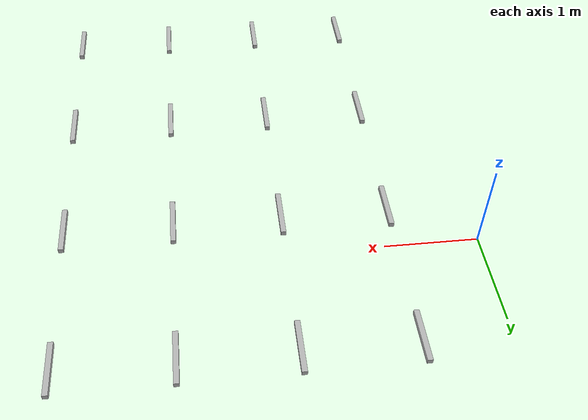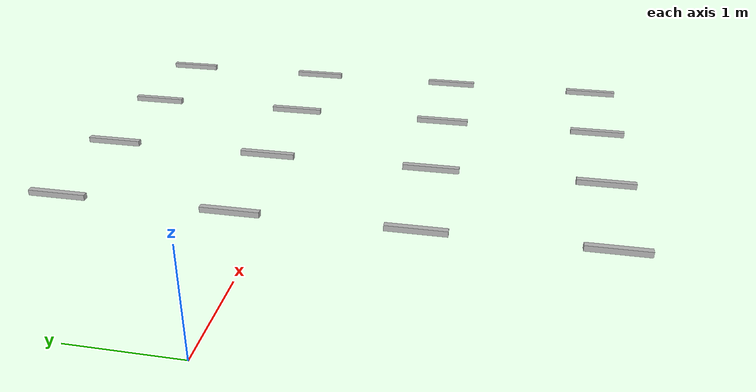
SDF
<?xml version="1.0" ?>

<sdf version="1.5">
  <world name="default">
    <include>
      <uri>model://sun</uri>
    </include>

    <model name='pendulum_1'>
      <pose>1.05 0 0.9  0.0 0 0</pose>
      <link name="link">
        <pose>0 0 -0.25  0 0 0</pose>
        <inertial>
          <mass>3.375</mass>
          <inertia>
            <ixx>0.071015625</ixx>
            <iyy>0.0014062500000000004</iyy>
            <izz>0.071015625</izz>
            <ixy>0.0</ixy>
            <ixz>0.0</ixz>
            <iyz>0.0</iyz>
          </inertia>
        </inertial>
        <collision name="collision">
          <geometry>
            <box>
              <size>0.05 0.5 0.05</size>
            </box>
          </geometry>
        </collision>
        <visual name="visual">
          <geometry>
            <box>
              <size>0.05 0.5 0.05</size>
            </box>
          </geometry>
        </visual>
      </link>
      <joint name="joint" type="revolute">
        <pose>0 0.25 0  0 0 0</pose>
        <parent>world</parent>
        <child>link</child>
        <axis>
          <xyz>1 0 0</xyz>
          <dynamics>
            <friction>0.0</friction>
          </dynamics>
        </axis>
      </joint>
    </model>

    <model name='pendulum_2'>
      <pose>2.1 0 0.9  0.0 0 0</pose>
      <link name="link">
        <pose>0 0 -0.25  0 0 0</pose>
        <inertial>
          <mass>3.375</mass>
          <inertia>
            <ixx>0.071015625</ixx>
            <iyy>0.0014062500000000004</iyy>
            <izz>0.071015625</izz>
            <ixy>0.0</ixy>
            <ixz>0.0</ixz>
            <iyz>0.0</iyz>
          </inertia>
        </inertial>
        <collision name="collision">
          <geometry>
            <box>
              <size>0.05 0.5 0.05</size>
            </box>
          </geometry>
        </collision>
        <visual name="visual">
          <geometry>
            <box>
              <size>0.05 0.5 0.05</size>
            </box>
          </geometry>
        </visual>
      </link>
      <joint name="joint" type="revolute">
        <pose>0 0.25 0  0 0 0</pose>
        <parent>world</parent>
        <child>link</child>
        <axis>
          <xyz>1 0 0</xyz>
          <dynamics>
            <friction>0.1</friction>
          </dynamics>
        </axis>
      </joint>
    </model>

    <model name='pendulum_3'>
      <pose>3.1500000000000004 0 0.9  0.0 0 0</pose>
      <link name="link">
        <pose>0 0 -0.25  0 0 0</pose>
        <inertial>
          <mass>3.375</mass>
          <inertia>
            <ixx>0.071015625</ixx>
            <iyy>0.0014062500000000004</iyy>
            <izz>0.071015625</izz>
            <ixy>0.0</ixy>
            <ixz>0.0</ixz>
            <iyz>0.0</iyz>
          </inertia>
        </inertial>
        <collision name="collision">
          <geometry>
            <box>
              <size>0.05 0.5 0.05</size>
            </box>
          </geometry>
        </collision>
        <visual name="visual">
          <geometry>
            <box>
              <size>0.05 0.5 0.05</size>
            </box>
          </geometry>
        </visual>
      </link>
      <joint name="joint" type="revolute">
        <pose>0 0.25 0  0 0 0</pose>
        <parent>world</parent>
        <child>link</child>
        <axis>
          <xyz>1 0 0</xyz>
          <dynamics>
            <friction>1.0</friction>
          </dynamics>
        </axis>
      </joint>
    </model>

    <model name='pendulum_4'>
      <pose>4.2 0 0.9  0.0 0 0</pose>
      <link name="link">
        <pose>0 0 -0.25  0 0 0</pose>
        <inertial>
          <mass>3.375</mass>
          <inertia>
            <ixx>0.071015625</ixx>
            <iyy>0.0014062500000000004</iyy>
            <izz>0.071015625</izz>
            <ixy>0.0</ixy>
            <ixz>0.0</ixz>
            <iyz>0.0</iyz>
          </inertia>
        </inertial>
        <collision name="collision">
          <geometry>
            <box>
              <size>0.05 0.5 0.05</size>
            </box>
          </geometry>
        </collision>
        <visual name="visual">
          <geometry>
            <box>
              <size>0.05 0.5 0.05</size>
            </box>
          </geometry>
        </visual>
      </link>
      <joint name="joint" type="revolute">
        <pose>0 0.25 0  0 0 0</pose>
        <parent>world</parent>
        <child>link</child>
        <axis>
          <xyz>1 0 0</xyz>
          <dynamics>
            <friction>10.0</friction>
          </dynamics>
        </axis>
      </joint>
    </model>

    <model name='universal_axis1_1'>
      <pose>1.05 -1.5 0.9  0.0 0 0</pose>
      <link name="link">
        <pose>0 0 -0.25  0 0 0</pose>
        <inertial>
          <mass>3.375</mass>
          <inertia>
            <ixx>0.071015625</ixx>
            <iyy>0.0014062500000000004</iyy>
            <izz>0.071015625</izz>
            <ixy>0.0</ixy>
            <ixz>0.0</ixz>
            <iyz>0.0</iyz>
          </inertia>
        </inertial>
        <collision name="collision">
          <geometry>
            <box>
              <size>0.05 0.5 0.05</size>
            </box>
          </geometry>
        </collision>
        <visual name="visual">
          <geometry>
            <box>
              <size>0.05 0.5 0.05</size>
            </box>
          </geometry>
        </visual>
      </link>
      <joint name="joint" type="universal">
        <pose>0 0.25 0  0 0 0</pose>
        <parent>world</parent>
        <child>link</child>
        <axis>
          <xyz>1 0 0</xyz>
          <dynamics>
            <friction>0.0</friction>
          </dynamics>
        </axis>
        <axis2>
          <xyz>0 0 1</xyz>
          <dynamics>
            <friction>0</friction>
          </dynamics>
        </axis2>
      </joint>
    </model>

    <model name='universal_axis1_2'>
      <pose>2.1 -1.5 0.9  0.0 0 0</pose>
      <link name="link">
        <pose>0 0 -0.25  0 0 0</pose>
        <inertial>
          <mass>3.375</mass>
          <inertia>
            <ixx>0.071015625</ixx>
            <iyy>0.0014062500000000004</iyy>
            <izz>0.071015625</izz>
            <ixy>0.0</ixy>
            <ixz>0.0</ixz>
            <iyz>0.0</iyz>
          </inertia>
        </inertial>
        <collision name="collision">
          <geometry>
            <box>
              <size>0.05 0.5 0.05</size>
            </box>
          </geometry>
        </collision>
        <visual name="visual">
          <geometry>
            <box>
              <size>0.05 0.5 0.05</size>
            </box>
          </geometry>
        </visual>
      </link>
      <joint name="joint" type="universal">
        <pose>0 0.25 0  0 0 0</pose>
        <parent>world</parent>
        <child>link</child>
        <axis>
          <xyz>1 0 0</xyz>
          <dynamics>
            <friction>0.1</friction>
          </dynamics>
        </axis>
        <axis2>
          <xyz>0 0 1</xyz>
          <dynamics>
            <friction>0</friction>
          </dynamics>
        </axis2>
      </joint>
    </model>

    <model name='universal_axis1_3'>
      <pose>3.1500000000000004 -1.5 0.9  0.0 0 0</pose>
      <link name="link">
        <pose>0 0 -0.25  0 0 0</pose>
        <inertial>
          <mass>3.375</mass>
          <inertia>
            <ixx>0.071015625</ixx>
            <iyy>0.0014062500000000004</iyy>
            <izz>0.071015625</izz>
            <ixy>0.0</ixy>
            <ixz>0.0</ixz>
            <iyz>0.0</iyz>
          </inertia>
        </inertial>
        <collision name="collision">
          <geometry>
            <box>
              <size>0.05 0.5 0.05</size>
            </box>
          </geometry>
        </collision>
        <visual name="visual">
          <geometry>
            <box>
              <size>0.05 0.5 0.05</size>
            </box>
          </geometry>
        </visual>
      </link>
      <joint name="joint" type="universal">
        <pose>0 0.25 0  0 0 0</pose>
        <parent>world</parent>
        <child>link</child>
        <axis>
          <xyz>1 0 0</xyz>
          <dynamics>
            <friction>1.0</friction>
          </dynamics>
        </axis>
        <axis2>
          <xyz>0 0 1</xyz>
          <dynamics>
            <friction>0</friction>
          </dynamics>
        </axis2>
      </joint>
    </model>

    <model name='universal_axis1_4'>
      <pose>4.2 -1.5 0.9  0.0 0 0</pose>
      <link name="link">
        <pose>0 0 -0.25  0 0 0</pose>
        <inertial>
          <mass>3.375</mass>
          <inertia>
            <ixx>0.071015625</ixx>
            <iyy>0.0014062500000000004</iyy>
            <izz>0.071015625</izz>
            <ixy>0.0</ixy>
            <ixz>0.0</ixz>
            <iyz>0.0</iyz>
          </inertia>
        </inertial>
        <collision name="collision">
          <geometry>
            <box>
              <size>0.05 0.5 0.05</size>
            </box>
          </geometry>
        </collision>
        <visual name="visual">
          <geometry>
            <box>
              <size>0.05 0.5 0.05</size>
            </box>
          </geometry>
        </visual>
      </link>
      <joint name="joint" type="universal">
        <pose>0 0.25 0  0 0 0</pose>
        <parent>world</parent>
        <child>link</child>
        <axis>
          <xyz>1 0 0</xyz>
          <dynamics>
            <friction>10.0</friction>
          </dynamics>
        </axis>
        <axis2>
          <xyz>0 0 1</xyz>
          <dynamics>
            <friction>0</friction>
          </dynamics>
        </axis2>
      </joint>
    </model>

    <model name='universal_axis2_1'>
      <pose>1.05 -3.0 0.9  0.0 0 0</pose>
      <link name="link">
        <pose>0 0 -0.25  0 0 0</pose>
        <inertial>
          <mass>3.375</mass>
          <inertia>
            <ixx>0.071015625</ixx>
            <iyy>0.0014062500000000004</iyy>
            <izz>0.071015625</izz>
            <ixy>0.0</ixy>
            <ixz>0.0</ixz>
            <iyz>0.0</iyz>
          </inertia>
        </inertial>
        <collision name="collision">
          <geometry>
            <box>
              <size>0.05 0.5 0.05</size>
            </box>
          </geometry>
        </collision>
        <visual name="visual">
          <geometry>
            <box>
              <size>0.05 0.5 0.05</size>
            </box>
          </geometry>
        </visual>
      </link>
      <joint name="joint" type="universal">
        <pose>0 0.25 0  0 0 0</pose>
        <parent>world</parent>
        <child>link</child>
        <axis>
          <xyz>0 0 1</xyz>
          <dynamics>
            <friction>0</friction>
          </dynamics>
        </axis>
        <axis2>
          <xyz>1 0 0</xyz>
          <dynamics>
            <friction>0.0</friction>
          </dynamics>
        </axis2>
      </joint>
    </model>

    <model name='universal_axis2_2'>
      <pose>2.1 -3.0 0.9  0.0 0 0</pose>
      <link name="link">
        <pose>0 0 -0.25  0 0 0</pose>
        <inertial>
          <mass>3.375</mass>
          <inertia>
            <ixx>0.071015625</ixx>
            <iyy>0.0014062500000000004</iyy>
            <izz>0.071015625</izz>
            <ixy>0.0</ixy>
            <ixz>0.0</ixz>
            <iyz>0.0</iyz>
          </inertia>
        </inertial>
        <collision name="collision">
          <geometry>
            <box>
              <size>0.05 0.5 0.05</size>
            </box>
          </geometry>
        </collision>
        <visual name="visual">
          <geometry>
            <box>
              <size>0.05 0.5 0.05</size>
            </box>
          </geometry>
        </visual>
      </link>
      <joint name="joint" type="universal">
        <pose>0 0.25 0  0 0 0</pose>
        <parent>world</parent>
        <child>link</child>
        <axis>
          <xyz>0 0 1</xyz>
          <dynamics>
            <friction>0</friction>
          </dynamics>
        </axis>
        <axis2>
          <xyz>1 0 0</xyz>
          <dynamics>
            <friction>0.1</friction>
          </dynamics>
        </axis2>
      </joint>
    </model>

    <model name='universal_axis2_3'>
      <pose>3.1500000000000004 -3.0 0.9  0.0 0 0</pose>
      <link name="link">
        <pose>0 0 -0.25  0 0 0</pose>
        <inertial>
          <mass>3.375</mass>
          <inertia>
            <ixx>0.071015625</ixx>
            <iyy>0.0014062500000000004</iyy>
            <izz>0.071015625</izz>
            <ixy>0.0</ixy>
            <ixz>0.0</ixz>
            <iyz>0.0</iyz>
          </inertia>
        </inertial>
        <collision name="collision">
          <geometry>
            <box>
              <size>0.05 0.5 0.05</size>
            </box>
          </geometry>
        </collision>
        <visual name="visual">
          <geometry>
            <box>
              <size>0.05 0.5 0.05</size>
            </box>
          </geometry>
        </visual>
      </link>
      <joint name="joint" type="universal">
        <pose>0 0.25 0  0 0 0</pose>
        <parent>world</parent>
        <child>link</child>
        <axis>
          <xyz>0 0 1</xyz>
          <dynamics>
            <friction>0</friction>
          </dynamics>
        </axis>
        <axis2>
          <xyz>1 0 0</xyz>
          <dynamics>
            <friction>1.0</friction>
          </dynamics>
        </axis2>
      </joint>
    </model>

    <model name='universal_axis2_4'>
      <pose>4.2 -3.0 0.9  0.0 0 0</pose>
      <link name="link">
        <pose>0 0 -0.25  0 0 0</pose>
        <inertial>
          <mass>3.375</mass>
          <inertia>
            <ixx>0.071015625</ixx>
            <iyy>0.0014062500000000004</iyy>
            <izz>0.071015625</izz>
            <ixy>0.0</ixy>
            <ixz>0.0</ixz>
            <iyz>0.0</iyz>
          </inertia>
        </inertial>
        <collision name="collision">
          <geometry>
            <box>
              <size>0.05 0.5 0.05</size>
            </box>
          </geometry>
        </collision>
        <visual name="visual">
          <geometry>
            <box>
              <size>0.05 0.5 0.05</size>
            </box>
          </geometry>
        </visual>
      </link>
      <joint name="joint" type="universal">
        <pose>0 0.25 0  0 0 0</pose>
        <parent>world</parent>
        <child>link</child>
        <axis>
          <xyz>0 0 1</xyz>
          <dynamics>
            <friction>0</friction>
          </dynamics>
        </axis>
        <axis2>
          <xyz>1 0 0</xyz>
          <dynamics>
            <friction>10.0</friction>
          </dynamics>
        </axis2>
      </joint>
    </model>

    <model name='slider_1'>
      <pose>1.05 1.5 0.9  0 0 0</pose>
      <link name="link">
        <pose>0 0 -0.25  0 0 0</pose>
        <inertial>
          <mass>3.375</mass>
          <inertia>
            <ixx>0.071015625</ixx>
            <iyy>0.0014062500000000004</iyy>
            <izz>0.071015625</izz>
            <ixy>0.0</ixy>
            <ixz>0.0</ixz>
            <iyz>0.0</iyz>
          </inertia>
        </inertial>
        <collision name="collision">
          <geometry>
            <box>
              <size>0.05 0.5 0.05</size>
            </box>
          </geometry>
        </collision>
        <visual name="visual">
          <geometry>
            <box>
              <size>0.05 0.5 0.05</size>
            </box>
          </geometry>
        </visual>
      </link>
      <joint name="joint" type="prismatic">
        <parent>world</parent>
        <child>link</child>
        <axis>
          <xyz>0 0 1</xyz>
          <dynamics>
            <friction>0.0</friction>
          </dynamics>
        </axis>
      </joint>
    </model>

    <model name='slider_2'>
      <pose>2.1 1.5 0.9  0 0 0</pose>
      <link name="link">
        <pose>0 0 -0.25  0 0 0</pose>
        <inertial>
          <mass>3.375</mass>
          <inertia>
            <ixx>0.071015625</ixx>
            <iyy>0.0014062500000000004</iyy>
            <izz>0.071015625</izz>
            <ixy>0.0</ixy>
            <ixz>0.0</ixz>
            <iyz>0.0</iyz>
          </inertia>
        </inertial>
        <collision name="collision">
          <geometry>
            <box>
              <size>0.05 0.5 0.05</size>
            </box>
          </geometry>
        </collision>
        <visual name="visual">
          <geometry>
            <box>
              <size>0.05 0.5 0.05</size>
            </box>
          </geometry>
        </visual>
      </link>
      <joint name="joint" type="prismatic">
        <parent>world</parent>
        <child>link</child>
        <axis>
          <xyz>0 0 1</xyz>
          <dynamics>
            <friction>5.0</friction>
          </dynamics>
        </axis>
      </joint>
    </model>

    <model name='slider_3'>
      <pose>3.1500000000000004 1.5 0.9  0 0 0</pose>
      <link name="link">
        <pose>0 0 -0.25  0 0 0</pose>
        <inertial>
          <mass>3.375</mass>
          <inertia>
            <ixx>0.071015625</ixx>
            <iyy>0.0014062500000000004</iyy>
            <izz>0.071015625</izz>
            <ixy>0.0</ixy>
            <ixz>0.0</ixz>
            <iyz>0.0</iyz>
          </inertia>
        </inertial>
        <collision name="collision">
          <geometry>
            <box>
              <size>0.05 0.5 0.05</size>
            </box>
          </geometry>
        </collision>
        <visual name="visual">
          <geometry>
            <box>
              <size>0.05 0.5 0.05</size>
            </box>
          </geometry>
        </visual>
      </link>
      <joint name="joint" type="prismatic">
        <parent>world</parent>
        <child>link</child>
        <axis>
          <xyz>0 0 1</xyz>
          <dynamics>
            <friction>9.0</friction>
          </dynamics>
        </axis>
      </joint>
    </model>

    <model name='slider_4'>
      <pose>4.2 1.5 0.9  0 0 0</pose>
      <link name="link">
        <pose>0 0 -0.25  0 0 0</pose>
        <inertial>
          <mass>3.375</mass>
          <inertia>
            <ixx>0.071015625</ixx>
            <iyy>0.0014062500000000004</iyy>
            <izz>0.071015625</izz>
            <ixy>0.0</ixy>
            <ixz>0.0</ixz>
            <iyz>0.0</iyz>
          </inertia>
        </inertial>
        <collision name="collision">
          <geometry>
            <box>
              <size>0.05 0.5 0.05</size>
            </box>
          </geometry>
        </collision>
        <visual name="visual">
          <geometry>
            <box>
              <size>0.05 0.5 0.05</size>
            </box>
          </geometry>
        </visual>
      </link>
      <joint name="joint" type="prismatic">
        <parent>world</parent>
        <child>link</child>
        <axis>
          <xyz>0 0 1</xyz>
          <dynamics>
            <friction>9.81</friction>
          </dynamics>
        </axis>
      </joint>
    </model>

  </world>
</sdf>
